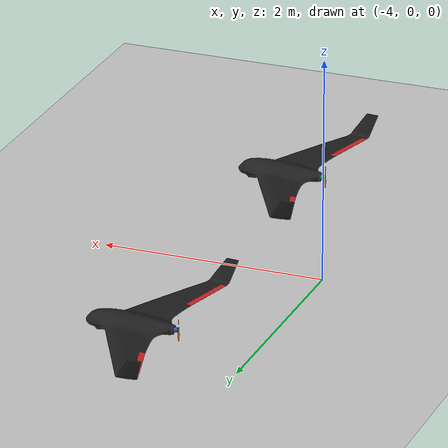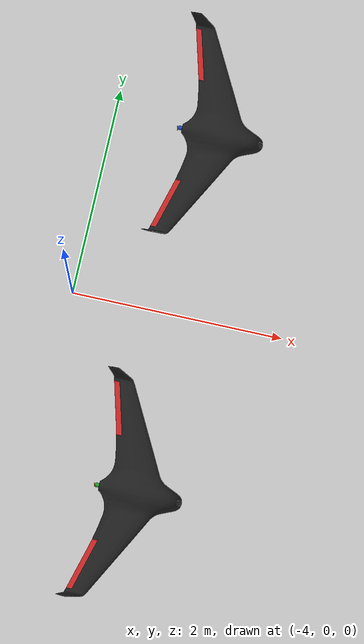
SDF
<sdf version="1.6">
 <world name="default">
  <model name="ground_plane">
   <static>1</static>
   <link name="link">
    <collision name="collision">
     <geometry><plane><normal>0 0 1</normal><size>5000 5000</size></plane></geometry>
     <surface><friction><ode><mu>1</mu><mu2>1</mu2></ode></friction></surface>
    </collision>
    <visual name="runway">
     <pose>0 0 0.005 0 -0 0</pose>
     <cast_shadows>0</cast_shadows>
     <geometry><plane><normal>0 0 1</normal><size>1829 45</size></plane></geometry>
     <material>
      <script><uri>file://media/materials/scripts/gazebo.material</uri><name>Gazebo/Runway</name></script>
     </material>
    </visual>
    <visual name="grass">
     <pose>0 0 -0.1 0 -0 0</pose>
     <cast_shadows>0</cast_shadows>
     <geometry><plane><normal>0 0 1</normal><size>5000 5000</size></plane></geometry>
     <material>
      <script><uri>file://media/materials/scripts/gazebo.material</uri><name>Gazebo/Grass</name></script>
     </material>
    </visual>
   </link>
  </model>
  <model name="SkywalkerX8_Green">
   <link name="skywalker_x8_green::cam_link">
    <pose>0 0 0.246 0 -0 0</pose>
    <inertial>
     <mass>0.01</mass>
     <inertia><ixx>0.0001</ixx><iyy>0.0001</iyy><izz>0.0001</izz><ixy>0</ixy><ixz>0</ixz><iyz>0</iyz></inertia>
    </inertial>
    <sensor name="chase_cam_wide" type="camera">
     <pose>0 -4 4 0 0.6 1.4</pose>
     <camera name="__default__">
      <horizontal_fov>1.5</horizontal_fov>
      <image><width>1920</width><height>1080</height></image>
      <clip><near>0.1</near><far>1000</far></clip>
     </camera>
     <always_on>1</always_on>
     <update_rate>60</update_rate>
     <visualize>0</visualize>
    </sensor>
   </link>
   <joint name="skywalker_x8_green::virtual_camera_mount" type="fixed">
    <child>skywalker_x8_green::cam_link</child>
    <parent>skywalker_x8_green::base_link</parent>
    <axis>
     <xyz>0 0 1</xyz>
     <limit><upper>0</upper><lower>0</lower></limit>
     <use_parent_model_frame>0</use_parent_model_frame>
    </axis>
   </joint>
   <link name="skywalker_x8_green::base_link">
    <pose>0 0 0.246 0 -0 0</pose>
    <inertial>
     <mass>4.5</mass>
     <inertia><ixx>0.45</ixx><ixy>0</ixy><ixz>0.06</ixz><iyy>0.325</iyy><iyz>0</iyz><izz>0.75</izz></inertia>
    </inertial>
    <collision name="base_link_collision">
     <pose>0 0 -0.07 0 -0 0</pose>
     <geometry><box><size>0.8 2.15 0.2</size></box></geometry>
    </collision>
    <visual name="base_link_visual">
     <geometry><mesh><uri>model://skywalker_x8/meshes/x8_wing.dae</uri></mesh></geometry>
     <material>
      <diffuse>0 1 1 1</diffuse>
      <specular>1 1 1 1</specular>
      <script><name>Gazebo/Black</name><uri>file://media/materials/scripts/gazebo.material</uri></script>
     </material>
    </visual>
    <visual name="motor">
     <pose>-0.361 0 0 0 1.57 0</pose>
     <geometry><cylinder><length>0.035</length><radius>0.02</radius></cylinder></geometry>
     <material>
      <diffuse>1 1 1 1</diffuse>
      <specular>1 1 1 1</specular>
      <script><name>Gazebo/Green</name><uri>file://media/materials/scripts/gazebo.material</uri></script>
     </material>
    </visual>
   </link>
   <link name="skywalker_x8_green::rotor_pusher">
    <pose>-0.385 0 0.246 0 1.57 0</pose>
    <inertial>
     <mass>0.025</mass>
     <inertia>
      <ixx>9.75e-06</ixx>
      <ixy>0</ixy>
      <ixz>0</ixz>
      <iyy>0.000166704</iyy>
      <iyz>0</iyz>
      <izz>0.000167604</izz>
     </inertia>
    </inertial>
    <collision name="collision">
     <geometry><cylinder><length>0.005</length><radius>0.065</radius></cylinder></geometry>
    </collision>
    <visual name="visual">
     <geometry>
      <mesh><scale>0.8 0.8 0.8</scale><uri>model://skywalker_x8/meshes/iris_prop_ccw.dae</uri></mesh>
     </geometry>
     <material>
      <diffuse>1 1 1 1</diffuse>
      <specular>1 1 1 1</specular>
      <script><name>Gazebo/Orange</name><uri>file://media/materials/scripts/gazebo.material</uri></script>
     </material>
    </visual>
   </link>
   <joint name="skywalker_x8_green::rotor_pusher_joint" type="revolute">
    <child>skywalker_x8_green::rotor_pusher</child>
    <parent>skywalker_x8_green::base_link</parent>
    <axis>
     <xyz>1 0 0</xyz>
     <limit><lower>-1e+16</lower><upper>1e+16</upper></limit>
     <dynamics>
      <damping>0.002</damping>
      <spring_reference>0</spring_reference>
      <spring_stiffness>0</spring_stiffness>
     </dynamics>
     <use_parent_model_frame>1</use_parent_model_frame>
    </axis>
   </joint>
   <link name="skywalker_x8_green::left_elevon">
    <inertial>
     <mass>0.1</mass>
     <inertia>
      <ixx>0.000102319</ixx>
      <ixy>0</ixy>
      <iyy>0.00334417</iyy>
      <ixz>0</ixz>
      <iyz>0</iyz>
      <izz>0.00344607</izz>
     </inertia>
     <pose>-0.3 0.75 -0.005 0 -0 0</pose>
    </inertial>
    <visual name="left_elevon_visual">
     <geometry><mesh><uri>model://skywalker_x8/meshes/x8_elevon_left.dae</uri></mesh></geometry>
     <material>
      <diffuse>1 1 1 1</diffuse>
      <specular>1 1 1 1</specular>
      <script><name>Gazebo/Red</name><uri>file://media/materials/scripts/gazebo.material</uri></script>
     </material>
    </visual>
    <pose>0 0 0.246 0 -0 0</pose>
   </link>
   <joint name="skywalker_x8_green::left_elevon_joint" type="revolute">
    <parent>skywalker_x8_green::base_link</parent>
    <child>skywalker_x8_green::left_elevon</child>
    <pose>-0.27 0.6 -0.005 0 -0 0.265</pose>
    <axis>
     <xyz>0 1 0</xyz>
     <limit><lower>-0.53</lower><upper>0.53</upper></limit>
     <dynamics>
      <damping>0.1</damping>
      <spring_reference>0</spring_reference>
      <spring_stiffness>0</spring_stiffness>
     </dynamics>
     <use_parent_model_frame>0</use_parent_model_frame>
    </axis>
   </joint>
   <link name="skywalker_x8_green::right_elevon">
    <inertial>
     <mass>0.1</mass>
     <inertia>
      <ixx>0.000102319</ixx>
      <ixy>0</ixy>
      <iyy>0.00334417</iyy>
      <ixz>0</ixz>
      <iyz>0</iyz>
      <izz>0.00344607</izz>
     </inertia>
     <pose>-0.3 -0.75 -0.005 0 -0 0</pose>
    </inertial>
    <visual name="right_elevon_visual">
     <geometry><mesh><uri>model://skywalker_x8/meshes/x8_elevon_right.dae</uri></mesh></geometry>
     <material>
      <diffuse>1 1 1 1</diffuse>
      <specular>1 1 1 1</specular>
      <script><name>Gazebo/Red</name><uri>file://media/materials/scripts/gazebo.material</uri></script>
     </material>
    </visual>
    <pose>0 0 0.246 0 -0 0</pose>
   </link>
   <joint name="skywalker_x8_green::right_elevon_joint" type="revolute">
    <parent>skywalker_x8_green::base_link</parent>
    <child>skywalker_x8_green::right_elevon</child>
    <pose>-0.27 -0.6 -0.005 0 0 -0.265</pose>
    <axis>
     <xyz>0 1 0</xyz>
     <limit><lower>-0.53</lower><upper>0.53</upper></limit>
     <dynamics>
      <damping>0.1</damping>
      <spring_reference>0</spring_reference>
      <spring_stiffness>0</spring_stiffness>
     </dynamics>
     <use_parent_model_frame>0</use_parent_model_frame>
    </axis>
   </joint>
   <link name="skywalker_x8_green::imu_link">
    <inertial>
     <mass>0.15</mass>
     <inertia><ixx>1e-05</ixx><ixy>0</ixy><ixz>0</ixz><iyy>2e-05</iyy><iyz>0</iyz><izz>2e-05</izz></inertia>
    </inertial>
    <sensor name="imu_sensor" type="imu">
     <pose>0 0 0 -3.14159 -0 0</pose>
     <always_on>1</always_on>
     <update_rate>1000</update_rate>
     <visualize>1</visualize>
     <topic>__default_topic__</topic>
     <plugin name="imu_plugin" filename="libgazebo_ros_imu_sensor.so">
      <topicName>imu</topicName>
      <bodyName>skywalker_x8_green::imu_link</bodyName>
      <updateRateHZ>10.0</updateRateHZ>
      <gaussianNoise>0.0</gaussianNoise>
      <xyzOffset>0 0 0</xyzOffset>
      <rpyOffset>0 0 0</rpyOffset>
      <frameName>skywalker_x8_green::imu_link</frameName>
      <initialOrientationAsReference>0</initialOrientationAsReference>
     </plugin>
    </sensor>
    <pose>0 0 0.246 0 -0 0</pose>
   </link>
   <joint name="skywalker_x8_green::skywalker_x8/imu_joint" type="revolute">
    <child>skywalker_x8_green::imu_link</child>
    <parent>skywalker_x8_green::base_link</parent>
    <axis>
     <xyz>0 0 1</xyz>
     <limit><lower>0</lower><upper>0</upper><effort>0</effort><velocity>0</velocity></limit>
     <dynamics>
      <damping>1</damping>
      <spring_reference>0</spring_reference>
      <spring_stiffness>0</spring_stiffness>
     </dynamics>
     <use_parent_model_frame>1</use_parent_model_frame>
    </axis>
    <physics>
     <ode><implicit_spring_damper>1</implicit_spring_damper><limit><cfm>0</cfm><erp>0.2</erp></limit></ode>
    </physics>
   </joint>
   <plugin name="x8_elevonleftbody_lift" filename="libLiftDragPlugin.so">
    <a0>0.13</a0>
    <cla>3.7</cla>
    <cda>0.06417112299</cda>
    <cma>-1.8</cma>
    <alpha_stall>0.3391428111</alpha_stall>
    <cla_stall>-3.85</cla_stall>
    <cda_stall>-0.9233984055</cda_stall>
    <cma_stall>0</cma_stall>
    <cp>0.01 0 0</cp>
    <area>0.80</area>
    <air_density>1.2041</air_density>
    <forward>1 0 0</forward>
    <upward>0 0 1</upward>
    <link_name>skywalker_x8_green::base_link</link_name>
   </plugin>
   <plugin name="x8_elevonleft_lift" filename="libLiftDragPlugin.so">
    <a0>0.15</a0>
    <cla>6.8</cla>
    <cda>0.06417112299</cda>
    <cma>-1.8</cma>
    <alpha_stall>0.6391428111</alpha_stall>
    <cla_stall>-3.85</cla_stall>
    <cda_stall>-0.9233984055</cda_stall>
    <cma_stall>0</cma_stall>
    <cp>-0.30 0.75 -0.005</cp>
    <area>0.10</area>
    <air_density>1.2041</air_density>
    <forward>1 0 0</forward>
    <upward>0 0 1</upward>
    <link_name>skywalker_x8_green::left_elevon</link_name>
   </plugin>
   <plugin name="x8_elevonright_lift" filename="libLiftDragPlugin.so">
    <a0>0.15</a0>
    <cla>6.8</cla>
    <cda>0.06417112299</cda>
    <cma>-1.8</cma>
    <alpha_stall>0.6391428111</alpha_stall>
    <cla_stall>-3.85</cla_stall>
    <cda_stall>-0.9233984055</cda_stall>
    <cma_stall>0</cma_stall>
    <cp>-0.30 -0.75 -0.005</cp>
    <area>0.10</area>
    <air_density>1.2041</air_density>
    <forward>1 0 0</forward>
    <upward>0 0 1</upward>
    <link_name>skywalker_x8_green::right_elevon</link_name>
   </plugin>
   <plugin name="x8_propeller1_lift" filename="libLiftDragPlugin.so">
    <a0>0.30</a0>
    <alpha_stall>1.4</alpha_stall>
    <cla>4.2500</cla>
    <cda>0.10</cda>
    <cma>0.00</cma>
    <cla_stall>-0.025</cla_stall>
    <cda_stall>0.0</cda_stall>
    <cma_stall>0.0</cma_stall>
    <area>0.02</area>
    <air_density>1.2041</air_density>
    <cp>0.074205 0 0</cp>
    <forward>0 1 0</forward>
    <upward>0 0 1</upward>
    <link_name>skywalker_x8_green::rotor_pusher</link_name>
   </plugin>
   <plugin name="x8_propeller2_lift" filename="libLiftDragPlugin.so">
    <a0>0.30</a0>
    <alpha_stall>1.4</alpha_stall>
    <cla>4.2500</cla>
    <cda>0.10</cda>
    <cma>0.00</cma>
    <cla_stall>-0.025</cla_stall>
    <cda_stall>0.0</cda_stall>
    <cma_stall>0.0</cma_stall>
    <area>0.02</area>
    <air_density>1.2041</air_density>
    <cp>-0.074205 0 0</cp>
    <forward>0 -1 0</forward>
    <upward>0 0 1</upward>
    <link_name>skywalker_x8_green::rotor_pusher</link_name>
   </plugin>
   <plugin name="left_winglet_lift" filename="libLiftDragPlugin.so">
    <a0>0.0</a0>
    <cla>4.752798721</cla>
    <cda>0.6417112299</cda>
    <cma>-1.8</cma>
    <alpha_stall>0.3391428111</alpha_stall>
    <cla_stall>-3.85</cla_stall>
    <cda_stall>-0.9233984055</cda_stall>
    <cma_stall>0</cma_stall>
    <cp>-0.36 1.04 0.08</cp>
    <area>0.12</area>
    <air_density>1.2041</air_density>
    <forward>1 0 0</forward>
    <upward>0 1 0</upward>
    <link_name>skywalker_x8_green::base_link</link_name>
   </plugin>
   <plugin name="right_winglet_lift" filename="libLiftDragPlugin.so">
    <a0>0.0</a0>
    <cla>4.752798721</cla>
    <cda>0.6417112299</cda>
    <cma>-1.8</cma>
    <alpha_stall>0.3391428111</alpha_stall>
    <cla_stall>-3.85</cla_stall>
    <cda_stall>-0.9233984055</cda_stall>
    <cma_stall>0</cma_stall>
    <cp>-0.36 -1.04 0.08</cp>
    <area>0.12</area>
    <air_density>1.2041</air_density>
    <forward>1 0 0</forward>
    <upward>0 -1 0</upward>
    <link_name>skywalker_x8_green::base_link</link_name>
   </plugin>
   <plugin name="ArduPilotPlugin" filename="libArduPilotPlugin.so">
    <fdm_addr>127.0.0.1</fdm_addr>
    <fdm_port_in>9012</fdm_port_in>
    <fdm_port_out>9013</fdm_port_out>
    <connectionTimeoutMaxCount>5</connectionTimeoutMaxCount>
    <lock_step>1</lock_step>
    <modelXYZToAirplaneXForwardZDown>0 0 0 3.141593 0 0</modelXYZToAirplaneXForwardZDown>
    <gazeboXYZToNED>0 0 0 3.141593 0 0</gazeboXYZToNED>
    <imuName>imu_sensor</imuName>
    <control channel="0">
     <jointName>skywalker_x8_green::left_elevon_joint</jointName>
     <multiplier>1.048</multiplier>
     <offset>-0.5</offset>
     <servo_min>1100</servo_min>
     <servo_max>1900</servo_max>
     <type>POSITION</type>
     <p_gain>10.0</p_gain>
     <i_gain>0</i_gain>
     <d_gain>0</d_gain>
     <i_max>0</i_max>
     <i_min>0</i_min>
     <cmd_max>2.5</cmd_max>
     <cmd_min>-2.5</cmd_min>
    </control>
    <control channel="1">
     <jointName>skywalker_x8_green::right_elevon_joint</jointName>
     <multiplier>1.048</multiplier>
     <offset>-0.5</offset>
     <servo_min>1100</servo_min>
     <servo_max>1900</servo_max>
     <type>POSITION</type>
     <p_gain>10.0</p_gain>
     <i_gain>0</i_gain>
     <d_gain>0</d_gain>
     <i_max>0</i_max>
     <i_min>0</i_min>
     <cmd_max>2.5</cmd_max>
     <cmd_min>-2.5</cmd_min>
    </control>
    <control channel="2">
     <jointName>skywalker_x8_green::rotor_pusher_joint</jointName>
     <multiplier>838</multiplier>
     <offset>0</offset>
     <servo_min>1200</servo_min>
     <servo_max>2000</servo_max>
     <type>VELOCITY</type>
     <p_gain>0.20</p_gain>
     <i_gain>0</i_gain>
     <d_gain>0</d_gain>
     <i_max>0</i_max>
     <i_min>0</i_min>
     <cmd_max>2.5</cmd_max>
     <cmd_min>-2.5</cmd_min>
    </control>
   </plugin>
   <pose>-3.00012 -1.732 -0.076 -0 -0 -0</pose>
  </model>
  <model name="SkywalkerX8_Blue">
   <link name="skywalker_x8_blue::cam_link">
    <pose>0 0 0.246 0 -0 0</pose>
    <inertial>
     <mass>0.01</mass>
     <inertia><ixx>0.0001</ixx><iyy>0.0001</iyy><izz>0.0001</izz><ixy>0</ixy><ixz>0</ixz><iyz>0</iyz></inertia>
    </inertial>
    <sensor name="chase_cam_wide" type="camera">
     <pose>0 4 4 -0 0.6 -1.4</pose>
     <camera name="__default__">
      <horizontal_fov>1.5</horizontal_fov>
      <image><width>1920</width><height>1080</height></image>
      <clip><near>0.1</near><far>1000</far></clip>
     </camera>
     <always_on>1</always_on>
     <update_rate>60</update_rate>
     <visualize>0</visualize>
    </sensor>
   </link>
   <joint name="skywalker_x8_blue::virtual_camera_mount" type="fixed">
    <child>skywalker_x8_blue::cam_link</child>
    <parent>skywalker_x8_blue::base_link</parent>
    <axis>
     <xyz>0 0 1</xyz>
     <limit><upper>0</upper><lower>0</lower></limit>
     <use_parent_model_frame>0</use_parent_model_frame>
    </axis>
   </joint>
   <link name="skywalker_x8_blue::base_link">
    <pose>0 0 0.246 0 -0 0</pose>
    <inertial>
     <mass>4.5</mass>
     <inertia><ixx>0.45</ixx><ixy>0</ixy><ixz>0.06</ixz><iyy>0.325</iyy><iyz>0</iyz><izz>0.75</izz></inertia>
    </inertial>
    <collision name="base_link_collision">
     <pose>0 0 -0.07 0 -0 0</pose>
     <geometry><box><size>0.8 2.15 0.2</size></box></geometry>
    </collision>
    <visual name="base_link_visual">
     <geometry><mesh><uri>model://skywalker_x8/meshes/x8_wing.dae</uri></mesh></geometry>
     <material>
      <diffuse>0 0 1 1</diffuse>
      <specular>1 1 1 1</specular>
      <script><name>Gazebo/Black</name><uri>file://media/materials/scripts/gazebo.material</uri></script>
     </material>
    </visual>
    <visual name="motor">
     <pose>-0.361 0 0 0 1.57 0</pose>
     <geometry><cylinder><length>0.035</length><radius>0.02</radius></cylinder></geometry>
     <material>
      <diffuse>1 1 1 1</diffuse>
      <specular>1 1 1 1</specular>
      <script><name>Gazebo/Blue</name><uri>file://media/materials/scripts/gazebo.material</uri></script>
     </material>
    </visual>
   </link>
   <link name="skywalker_x8_blue::rotor_pusher">
    <pose>-0.385 0 0.246 0 1.57 0</pose>
    <inertial>
     <mass>0.025</mass>
     <inertia>
      <ixx>9.75e-06</ixx>
      <ixy>0</ixy>
      <ixz>0</ixz>
      <iyy>0.000166704</iyy>
      <iyz>0</iyz>
      <izz>0.000167604</izz>
     </inertia>
    </inertial>
    <collision name="collision">
     <geometry><cylinder><length>0.005</length><radius>0.065</radius></cylinder></geometry>
    </collision>
    <visual name="visual">
     <geometry>
      <mesh><scale>0.8 0.8 0.8</scale><uri>model://skywalker_x8/meshes/iris_prop_ccw.dae</uri></mesh>
     </geometry>
     <material>
      <diffuse>1 1 1 1</diffuse>
      <specular>1 1 1 1</specular>
      <script><name>Gazebo/Orange</name><uri>file://media/materials/scripts/gazebo.material</uri></script>
     </material>
    </visual>
   </link>
   <joint name="skywalker_x8_blue::rotor_pusher_joint" type="revolute">
    <child>skywalker_x8_blue::rotor_pusher</child>
    <parent>skywalker_x8_blue::base_link</parent>
    <axis>
     <xyz>1 0 0</xyz>
     <limit><lower>-1e+16</lower><upper>1e+16</upper></limit>
     <dynamics>
      <damping>0.002</damping>
      <spring_reference>0</spring_reference>
      <spring_stiffness>0</spring_stiffness>
     </dynamics>
     <use_parent_model_frame>1</use_parent_model_frame>
    </axis>
   </joint>
   <link name="skywalker_x8_blue::left_elevon">
    <inertial>
     <mass>0.1</mass>
     <inertia>
      <ixx>0.000102319</ixx>
      <ixy>0</ixy>
      <iyy>0.00334417</iyy>
      <ixz>0</ixz>
      <iyz>0</iyz>
      <izz>0.00344607</izz>
     </inertia>
     <pose>-0.3 0.75 -0.005 0 -0 0</pose>
    </inertial>
    <visual name="left_elevon_visual">
     <geometry><mesh><uri>model://skywalker_x8/meshes/x8_elevon_left.dae</uri></mesh></geometry>
     <material>
      <diffuse>1 1 1 1</diffuse>
      <specular>1 1 1 1</specular>
      <script><name>Gazebo/Red</name><uri>file://media/materials/scripts/gazebo.material</uri></script>
     </material>
    </visual>
    <pose>0 0 0.246 0 -0 0</pose>
   </link>
   <joint name="skywalker_x8_blue::left_elevon_joint" type="revolute">
    <parent>skywalker_x8_blue::base_link</parent>
    <child>skywalker_x8_blue::left_elevon</child>
    <pose>-0.27 0.6 -0.005 0 -0 0.265</pose>
    <axis>
     <xyz>0 1 0</xyz>
     <limit><lower>-0.53</lower><upper>0.53</upper></limit>
     <dynamics>
      <damping>0.1</damping>
      <spring_reference>0</spring_reference>
      <spring_stiffness>0</spring_stiffness>
     </dynamics>
     <use_parent_model_frame>0</use_parent_model_frame>
    </axis>
   </joint>
   <link name="skywalker_x8_blue::right_elevon">
    <inertial>
     <mass>0.1</mass>
     <inertia>
      <ixx>0.000102319</ixx>
      <ixy>0</ixy>
      <iyy>0.00334417</iyy>
      <ixz>0</ixz>
      <iyz>0</iyz>
      <izz>0.00344607</izz>
     </inertia>
     <pose>-0.3 -0.75 -0.005 0 -0 0</pose>
    </inertial>
    <visual name="right_elevon_visual">
     <geometry><mesh><uri>model://skywalker_x8/meshes/x8_elevon_right.dae</uri></mesh></geometry>
     <material>
      <diffuse>1 1 1 1</diffuse>
      <specular>1 1 1 1</specular>
      <script><name>Gazebo/Red</name><uri>file://media/materials/scripts/gazebo.material</uri></script>
     </material>
    </visual>
    <pose>0 0 0.246 0 -0 0</pose>
   </link>
   <joint name="skywalker_x8_blue::right_elevon_joint" type="revolute">
    <parent>skywalker_x8_blue::base_link</parent>
    <child>skywalker_x8_blue::right_elevon</child>
    <pose>-0.27 -0.6 -0.005 0 0 -0.265</pose>
    <axis>
     <xyz>0 1 0</xyz>
     <limit><lower>-0.53</lower><upper>0.53</upper></limit>
     <dynamics>
      <damping>0.1</damping>
      <spring_reference>0</spring_reference>
      <spring_stiffness>0</spring_stiffness>
     </dynamics>
     <use_parent_model_frame>0</use_parent_model_frame>
    </axis>
   </joint>
   <link name="skywalker_x8_blue::imu_link">
    <inertial>
     <mass>0.15</mass>
     <inertia><ixx>1e-05</ixx><ixy>0</ixy><ixz>0</ixz><iyy>2e-05</iyy><iyz>0</iyz><izz>2e-05</izz></inertia>
    </inertial>
    <sensor name="imu_sensor" type="imu">
     <pose>0 0 0 -3.14159 -0 0</pose>
     <always_on>1</always_on>
     <update_rate>1000</update_rate>
     <visualize>1</visualize>
     <topic>__default_topic__</topic>
     <plugin name="imu_plugin" filename="libgazebo_ros_imu_sensor.so">
      <topicName>imu</topicName>
      <bodyName>skywalker_x8_blue::imu_link</bodyName>
      <updateRateHZ>10.0</updateRateHZ>
      <gaussianNoise>0.0</gaussianNoise>
      <xyzOffset>0 0 0</xyzOffset>
      <rpyOffset>0 0 0</rpyOffset>
      <frameName>skywalker_x8_blue::imu_link</frameName>
      <initialOrientationAsReference>0</initialOrientationAsReference>
     </plugin>
    </sensor>
    <pose>0 0 0.246 0 -0 0</pose>
   </link>
   <joint name="skywalker_x8_blue::skywalker_x8/imu_joint" type="revolute">
    <child>skywalker_x8_blue::imu_link</child>
    <parent>skywalker_x8_blue::base_link</parent>
    <axis>
     <xyz>0 0 1</xyz>
     <limit><lower>0</lower><upper>0</upper><effort>0</effort><velocity>0</velocity></limit>
     <dynamics>
      <damping>1</damping>
      <spring_reference>0</spring_reference>
      <spring_stiffness>0</spring_stiffness>
     </dynamics>
     <use_parent_model_frame>1</use_parent_model_frame>
    </axis>
    <physics>
     <ode><implicit_spring_damper>1</implicit_spring_damper><limit><cfm>0</cfm><erp>0.2</erp></limit></ode>
    </physics>
   </joint>
   <plugin name="x8_elevonleftbody_lift" filename="libLiftDragPlugin.so">
    <a0>0.13</a0>
    <cla>3.7</cla>
    <cda>0.06417112299</cda>
    <cma>-1.8</cma>
    <alpha_stall>0.3391428111</alpha_stall>
    <cla_stall>-3.85</cla_stall>
    <cda_stall>-0.9233984055</cda_stall>
    <cma_stall>0</cma_stall>
    <cp>0.01 0 0</cp>
    <area>0.80</area>
    <air_density>1.2041</air_density>
    <forward>1 0 0</forward>
    <upward>0 0 1</upward>
    <link_name>skywalker_x8_blue::base_link</link_name>
   </plugin>
   <plugin name="x8_elevonleft_lift" filename="libLiftDragPlugin.so">
    <a0>0.15</a0>
    <cla>6.8</cla>
    <cda>0.06417112299</cda>
    <cma>-1.8</cma>
    <alpha_stall>0.6391428111</alpha_stall>
    <cla_stall>-3.85</cla_stall>
    <cda_stall>-0.9233984055</cda_stall>
    <cma_stall>0</cma_stall>
    <cp>-0.30 0.75 -0.005</cp>
    <area>0.10</area>
    <air_density>1.2041</air_density>
    <forward>1 0 0</forward>
    <upward>0 0 1</upward>
    <link_name>skywalker_x8_blue::left_elevon</link_name>
   </plugin>
   <plugin name="x8_elevonright_lift" filename="libLiftDragPlugin.so">
    <a0>0.15</a0>
    <cla>6.8</cla>
    <cda>0.06417112299</cda>
    <cma>-1.8</cma>
    <alpha_stall>0.6391428111</alpha_stall>
    <cla_stall>-3.85</cla_stall>
    <cda_stall>-0.9233984055</cda_stall>
    <cma_stall>0</cma_stall>
    <cp>-0.30 -0.75 -0.005</cp>
    <area>0.10</area>
    <air_density>1.2041</air_density>
    <forward>1 0 0</forward>
    <upward>0 0 1</upward>
    <link_name>skywalker_x8_blue::right_elevon</link_name>
   </plugin>
   <plugin name="x8_propeller1_lift" filename="libLiftDragPlugin.so">
    <a0>0.30</a0>
    <alpha_stall>1.4</alpha_stall>
    <cla>4.2500</cla>
    <cda>0.10</cda>
    <cma>0.00</cma>
    <cla_stall>-0.025</cla_stall>
    <cda_stall>0.0</cda_stall>
    <cma_stall>0.0</cma_stall>
    <area>0.02</area>
    <air_density>1.2041</air_density>
    <cp>0.074205 0 0</cp>
    <forward>0 1 0</forward>
    <upward>0 0 1</upward>
    <link_name>skywalker_x8_blue::rotor_pusher</link_name>
   </plugin>
   <plugin name="x8_propeller2_lift" filename="libLiftDragPlugin.so">
    <a0>0.30</a0>
    <alpha_stall>1.4</alpha_stall>
    <cla>4.2500</cla>
    <cda>0.10</cda>
    <cma>0.00</cma>
    <cla_stall>-0.025</cla_stall>
    <cda_stall>0.0</cda_stall>
    <cma_stall>0.0</cma_stall>
    <area>0.02</area>
    <air_density>1.2041</air_density>
    <cp>-0.074205 0 0</cp>
    <forward>0 -1 0</forward>
    <upward>0 0 1</upward>
    <link_name>skywalker_x8_blue::rotor_pusher</link_name>
   </plugin>
   <plugin name="left_winglet_lift" filename="libLiftDragPlugin.so">
    <a0>0.0</a0>
    <cla>4.752798721</cla>
    <cda>0.6417112299</cda>
    <cma>-1.8</cma>
    <alpha_stall>0.3391428111</alpha_stall>
    <cla_stall>-3.85</cla_stall>
    <cda_stall>-0.9233984055</cda_stall>
    <cma_stall>0</cma_stall>
    <cp>-0.36 1.04 0.08</cp>
    <area>0.12</area>
    <air_density>1.2041</air_density>
    <forward>1 0 0</forward>
    <upward>0 1 0</upward>
    <link_name>skywalker_x8_blue::base_link</link_name>
   </plugin>
   <plugin name="right_winglet_lift" filename="libLiftDragPlugin.so">
    <a0>0.0</a0>
    <cla>4.752798721</cla>
    <cda>0.6417112299</cda>
    <cma>-1.8</cma>
    <alpha_stall>0.3391428111</alpha_stall>
    <cla_stall>-3.85</cla_stall>
    <cda_stall>-0.9233984055</cda_stall>
    <cma_stall>0</cma_stall>
    <cp>-0.36 -1.04 0.08</cp>
    <area>0.12</area>
    <air_density>1.2041</air_density>
    <forward>1 0 0</forward>
    <upward>0 -1 0</upward>
    <link_name>skywalker_x8_blue::base_link</link_name>
   </plugin>
   <plugin name="ArduPilotPlugin" filename="libArduPilotPlugin.so">
    <fdm_addr>127.0.0.1</fdm_addr>
    <fdm_port_in>9022</fdm_port_in>
    <fdm_port_out>9023</fdm_port_out>
    <connectionTimeoutMaxCount>5</connectionTimeoutMaxCount>
    <lock_step>1</lock_step>
    <modelXYZToAirplaneXForwardZDown>0 0 0 3.141593 0 0</modelXYZToAirplaneXForwardZDown>
    <gazeboXYZToNED>0 0 0 3.141593 0 0</gazeboXYZToNED>
    <imuName>imu_sensor</imuName>
    <control channel="0">
     <jointName>skywalker_x8_blue::left_elevon_joint</jointName>
     <multiplier>1.048</multiplier>
     <offset>-0.5</offset>
     <servo_min>1100</servo_min>
     <servo_max>1900</servo_max>
     <type>POSITION</type>
     <p_gain>10.0</p_gain>
     <i_gain>0</i_gain>
     <d_gain>0</d_gain>
     <i_max>0</i_max>
     <i_min>0</i_min>
     <cmd_max>2.5</cmd_max>
     <cmd_min>-2.5</cmd_min>
    </control>
    <control channel="1">
     <jointName>skywalker_x8_blue::right_elevon_joint</jointName>
     <multiplier>1.048</multiplier>
     <offset>-0.5</offset>
     <servo_min>1100</servo_min>
     <servo_max>1900</servo_max>
     <type>POSITION</type>
     <p_gain>10.0</p_gain>
     <i_gain>0</i_gain>
     <d_gain>0</d_gain>
     <i_max>0</i_max>
     <i_min>0</i_min>
     <cmd_max>2.5</cmd_max>
     <cmd_min>-2.5</cmd_min>
    </control>
    <control channel="2">
     <jointName>skywalker_x8_blue::rotor_pusher_joint</jointName>
     <multiplier>838</multiplier>
     <offset>0</offset>
     <servo_min>1200</servo_min>
     <servo_max>2000</servo_max>
     <type>VELOCITY</type>
     <p_gain>0.20</p_gain>
     <i_gain>0</i_gain>
     <d_gain>0</d_gain>
     <i_max>0</i_max>
     <i_min>0</i_min>
     <cmd_max>2.5</cmd_max>
     <cmd_min>-2.5</cmd_min>
    </control>
   </plugin>
   <pose>-3.00012 1.732 -0.076 0 -0 2e-06</pose>
  </model>
 </world>
</sdf>
